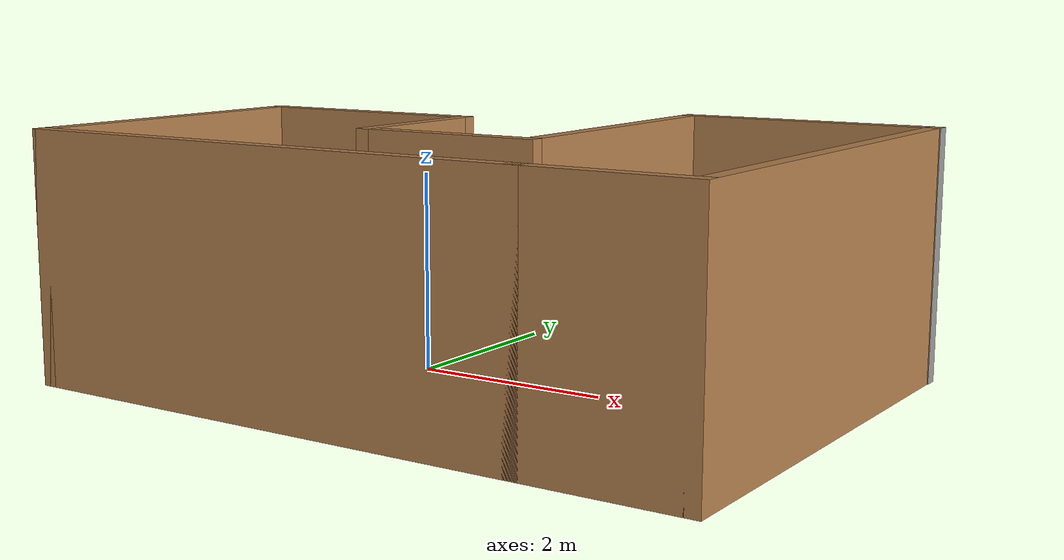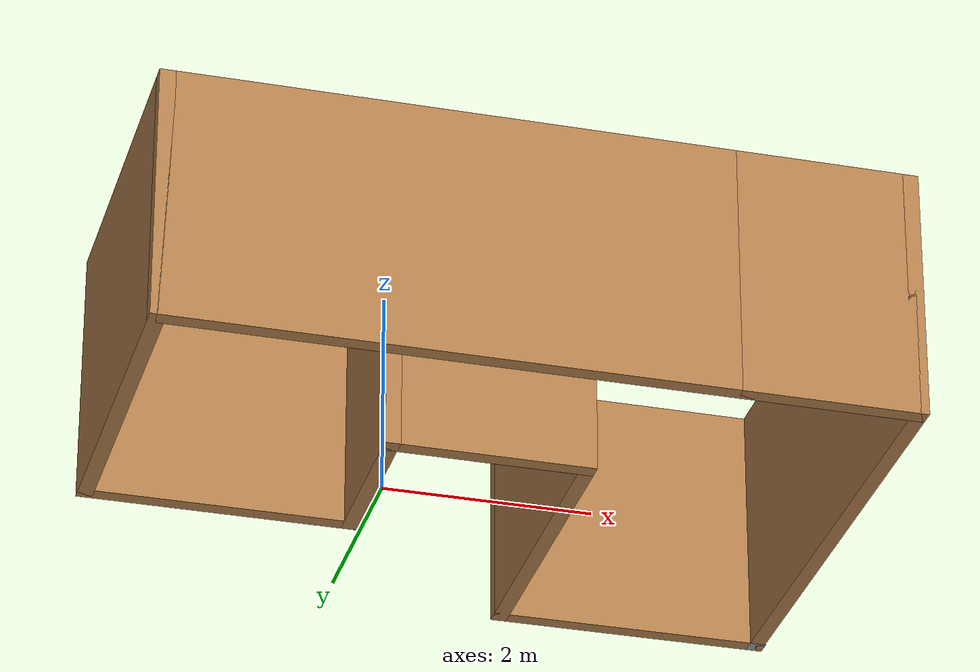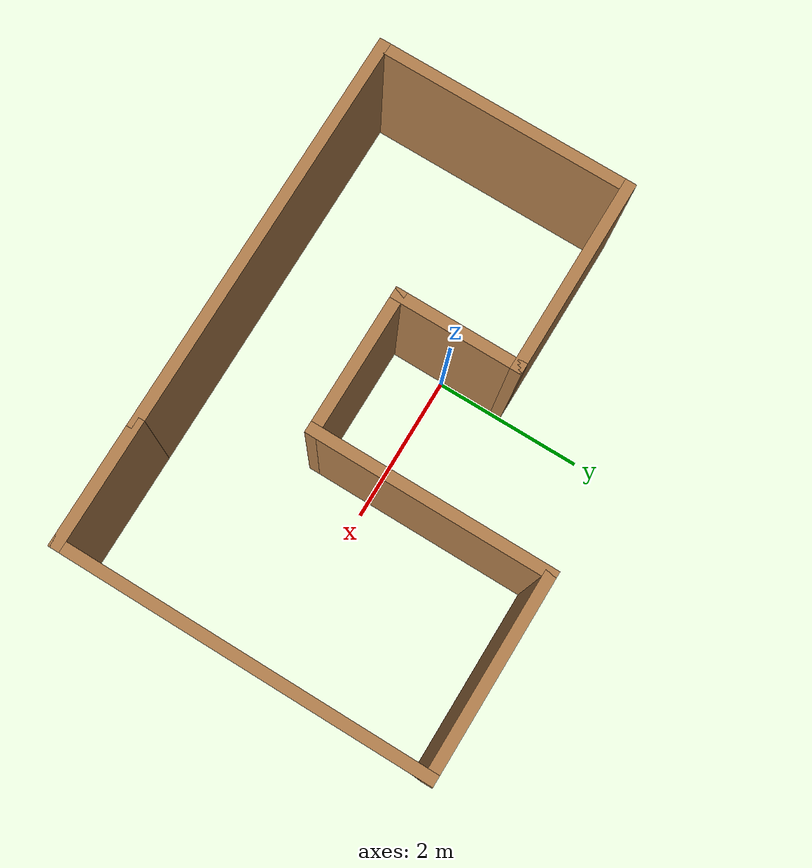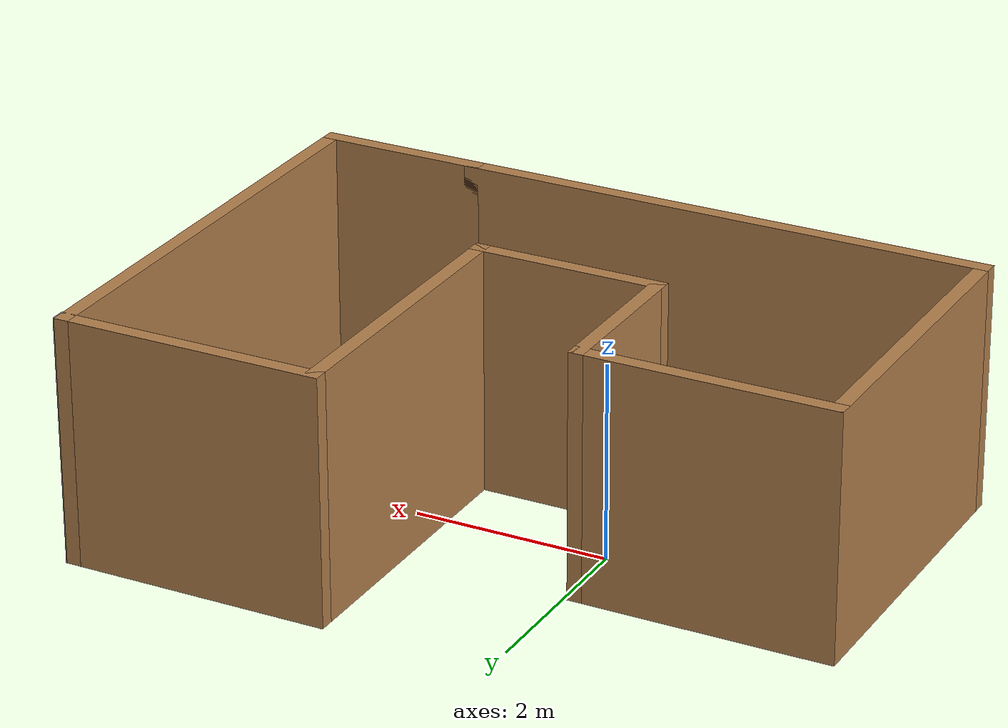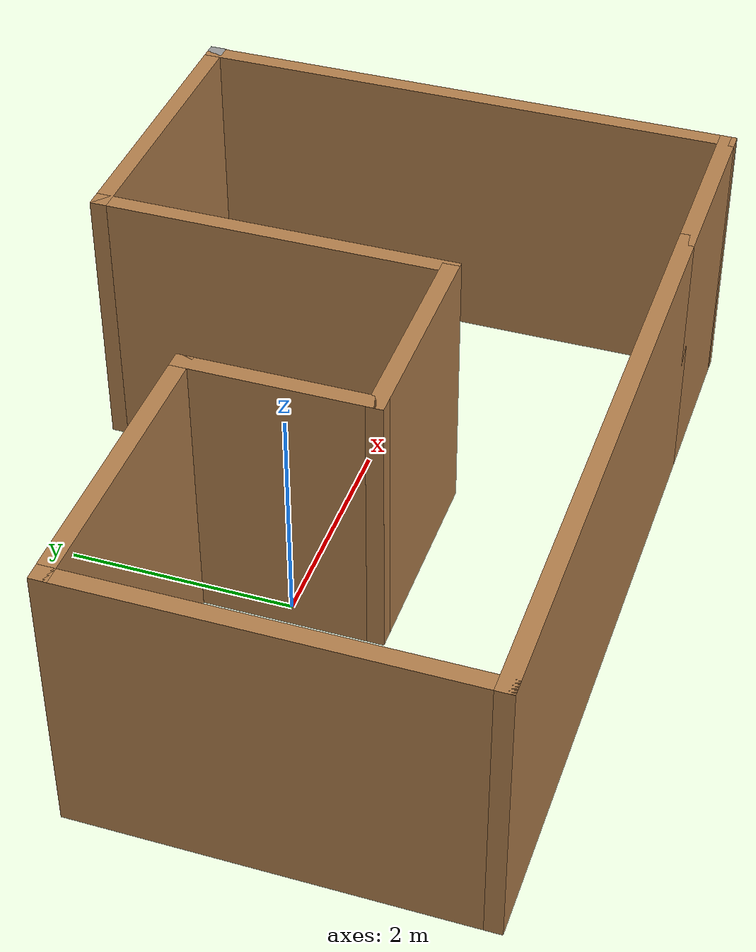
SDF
<?xml version='1.0'?>
<sdf version='1.6'>
  <model name='build'>
    <pose frame=''>0.86 -0.125 0 0 -0 0</pose>
    <link name='Wall_14'>
      <collision name='Wall_14_Collision'>
        <geometry>
          <box>
            <size>3.5 0.15 2.5</size>
          </box>
        </geometry>
        <pose frame=''>0 0 1.25 0 -0 0</pose>
      </collision>
      <visual name='Wall_14_Visual'>
        <pose frame=''>0 0 1.25 0 -0 0</pose>
        <geometry>
          <box>
            <size>3.5 0.15 2.5</size>
          </box>
        </geometry>
        <material>
          <script>
            <uri>file://media/materials/scripts/gazebo.material</uri>
            <name>Gazebo/Wood</name>
          </script>
          <ambient>1 1 1 1</ambient>
        </material>
        <meta>
          <layer>0</layer>
        </meta>
      </visual>
      <pose frame=''>-3.48 -0.75 0 0 -0 1.5708</pose>
    </link>
    <link name='Wall_16'>
      <collision name='Wall_16_Collision'>
        <geometry>
          <box>
            <size>2.66 0.15 2.5</size>
          </box>
        </geometry>
        <pose frame=''>0 0 1.25 0 -0 0</pose>
      </collision>
      <visual name='Wall_16_Visual'>
        <pose frame=''>0 0 1.25 0 -0 0</pose>
        <geometry>
          <box>
            <size>2.66 0.15 2.5</size>
          </box>
        </geometry>
        <material>
          <script>
            <uri>file://media/materials/scripts/gazebo.material</uri>
            <name>Gazebo/Wood</name>
          </script>
          <ambient>1 1 1 1</ambient>
        </material>
        <meta>
          <layer>0</layer>
        </meta>
      </visual>
      <pose frame=''>-2.225 0.925 0 0 -0 3.14159</pose>
    </link>
    <link name='Wall_2'>
      <collision name='Wall_2_Collision'>
        <geometry>
          <box>
            <size>5.5 0.15 2.5</size>
          </box>
        </geometry>
        <pose frame=''>0 0 1.25 0 -0 0</pose>
      </collision>
      <visual name='Wall_2_Visual'>
        <pose frame=''>0 0 1.25 0 -0 0</pose>
        <geometry>
          <box>
            <size>5.5 0.15 2.5</size>
          </box>
        </geometry>
        <material>
          <script>
            <uri>file://media/materials/scripts/gazebo.material</uri>
            <name>Gazebo/Wood</name>
          </script>
          <ambient>1 1 1 1</ambient>
        </material>
        <meta>
          <layer>0</layer>
        </meta>
      </visual>
      <pose frame=''>-0.805 -2.425 0 0 -0 0</pose>
    </link>
    <link name='Wall_3'>
      <collision name='Wall_3_Collision'>
        <geometry>
          <box>
            <size>1.75 0.15 2.5</size>
          </box>
        </geometry>
        <pose frame=''>0 0 1.25 0 -0 0</pose>
      </collision>
      <visual name='Wall_3_Visual'>
        <pose frame=''>0 0 1.25 0 -0 0</pose>
        <geometry>
          <box>
            <size>1.75 0.15 2.5</size>
          </box>
        </geometry>
        <material>
          <script>
            <uri>file://media/materials/scripts/gazebo.material</uri>
            <name>Gazebo/Wood</name>
          </script>
          <ambient>1 1 1 1</ambient>
        </material>
        <meta>
          <layer>0</layer>
        </meta>
      </visual>
      <pose frame=''>2.67 -2.425 0 0 -0 0</pose>
    </link>
    <link name='Wall_4'>
      <collision name='Wall_4_Collision'>
        <geometry>
          <box>
            <size>5 0.15 2.5</size>
          </box>
        </geometry>
        <pose frame=''>0 0 1.25 0 -0 0</pose>
      </collision>
      <visual name='Wall_4_Visual'>
        <pose frame=''>0 0 1.25 0 -0 0</pose>
        <geometry>
          <box>
            <size>5 0.15 2.5</size>
          </box>
        </geometry>
        <material>
          <script>
            <uri>file://media/materials/scripts/gazebo.material</uri>
            <name>Gazebo/Wood</name>
          </script>
          <ambient>1 1 1 1</ambient>
        </material>
        <meta>
          <layer>0</layer>
        </meta>
      </visual>
      <pose frame=''>3.47 0 0 0 -0 1.5708</pose>
    </link>
    <link name='Wall_5'>
      <collision name='Wall_5_Collision'>
        <geometry>
          <box>
            <size>0.16 0.15 2.5</size>
          </box>
        </geometry>
        <pose frame=''>0 0 1.25 0 -0 0</pose>
      </collision>
      <visual name='Wall_5_Visual'>
        <pose frame=''>0 0 1.25 0 -0 0</pose>
        <geometry>
          <box>
            <size>0.16 0.15 2.5</size>
          </box>
        </geometry>
        <material>
          <script>
            <uri>file://media/materials/scripts/gazebo.material</uri>
            <name>Gazebo/Grey</name>
          </script>
          <ambient>1 1 1 1</ambient>
        </material>
        <meta>
          <layer>0</layer>
        </meta>
      </visual>
      <pose frame=''>3.475 2.425 0 0 -0 0</pose>
    </link>
    <link name='Wall_6'>
      <collision name='Wall_6_Collision'>
        <geometry>
          <box>
            <size>2.75 0.15 2.5</size>
          </box>
        </geometry>
        <pose frame=''>0 0 1.25 0 -0 0</pose>
      </collision>
      <visual name='Wall_6_Visual'>
        <pose frame=''>0 0 1.25 0 -0 0</pose>
        <geometry>
          <box>
            <size>2.75 0.15 2.5</size>
          </box>
        </geometry>
        <material>
          <script>
            <uri>file://media/materials/scripts/gazebo.material</uri>
            <name>Gazebo/Wood</name>
          </script>
          <ambient>1 1 1 1</ambient>
        </material>
        <meta>
          <layer>0</layer>
        </meta>
      </visual>
      <pose frame=''>2.18 2.425 0 0 -0 3.14159</pose>
    </link>
    <link name='Wall_7'>
      <collision name='Wall_7_Collision'>
        <geometry>
          <box>
            <size>3.25 0.15 2.5</size>
          </box>
        </geometry>
        <pose frame=''>0 0 1.25 0 -0 0</pose>
      </collision>
      <visual name='Wall_7_Visual'>
        <pose frame=''>0 0 1.25 0 -0 0</pose>
        <geometry>
          <box>
            <size>3.25 0.15 2.5</size>
          </box>
        </geometry>
        <material>
          <script>
            <uri>file://media/materials/scripts/gazebo.material</uri>
            <name>Gazebo/Wood</name>
          </script>
          <ambient>1 1 1 1</ambient>
        </material>
        <meta>
          <layer>0</layer>
        </meta>
      </visual>
      <pose frame=''>0.88 0.875 0 0 0 -1.5708</pose>
    </link>
    <link name='Wall_8'>
      <collision name='Wall_8_Collision'>
        <geometry>
          <box>
            <size>2 0.15 2.5</size>
          </box>
        </geometry>
        <pose frame=''>0 0 1.25 0 -0 0</pose>
      </collision>
      <visual name='Wall_8_Visual'>
        <pose frame=''>0 0 1.25 0 -0 0</pose>
        <geometry>
          <box>
            <size>2 0.15 2.5</size>
          </box>
        </geometry>
        <material>
          <script>
            <uri>file://media/materials/scripts/gazebo.material</uri>
            <name>Gazebo/Wood</name>
          </script>
          <ambient>1 1 1 1</ambient>
        </material>
        <meta>
          <layer>0</layer>
        </meta>
      </visual>
      <pose frame=''>-0.045 -0.675 0 0 -0 3.14159</pose>
    </link>
    <link name='Wall_9'>
      <collision name='Wall_9_Collision'>
        <geometry>
          <box>
            <size>1.75 0.15 2.5</size>
          </box>
        </geometry>
        <pose frame=''>0 0 1.25 0 -0 0</pose>
      </collision>
      <visual name='Wall_9_Visual'>
        <pose frame=''>0 0 1.25 0 -0 0</pose>
        <geometry>
          <box>
            <size>1.75 0.15 2.5</size>
          </box>
        </geometry>
        <material>
          <script>
            <uri>file://media/materials/scripts/gazebo.material</uri>
            <name>Gazebo/Wood</name>
          </script>
          <ambient>1 1 1 1</ambient>
        </material>
        <meta>
          <layer>0</layer>
        </meta>
      </visual>
      <pose frame=''>-0.97 0.125 0 0 -0 1.5708</pose>
    </link>
    <static>1</static>
  </model>
</sdf>
